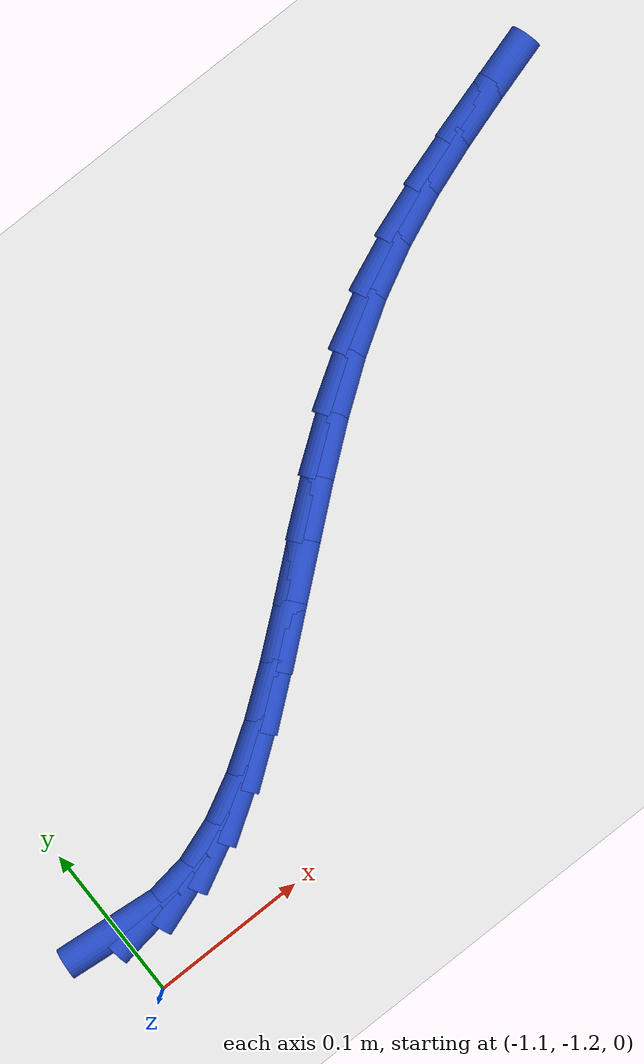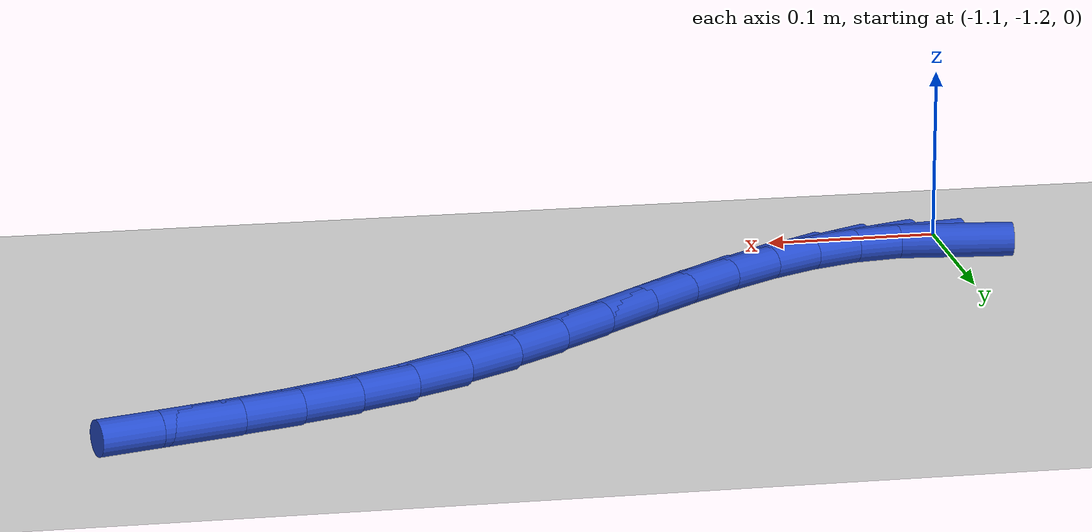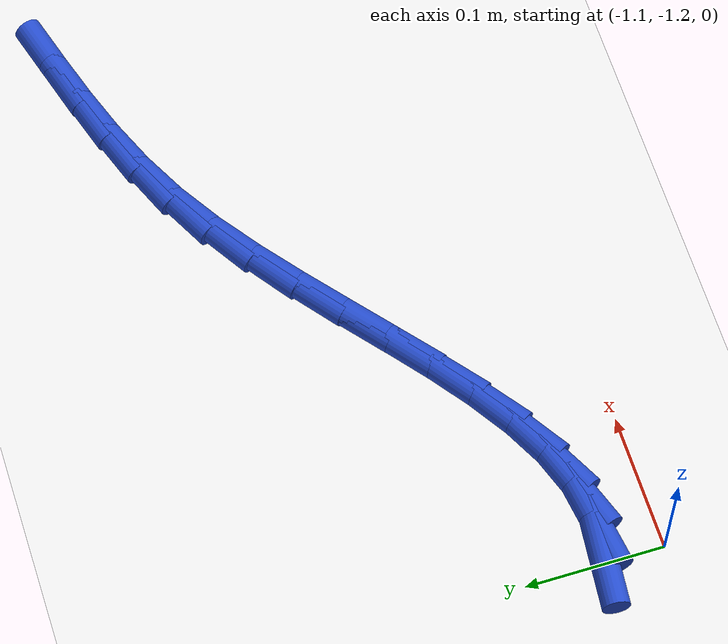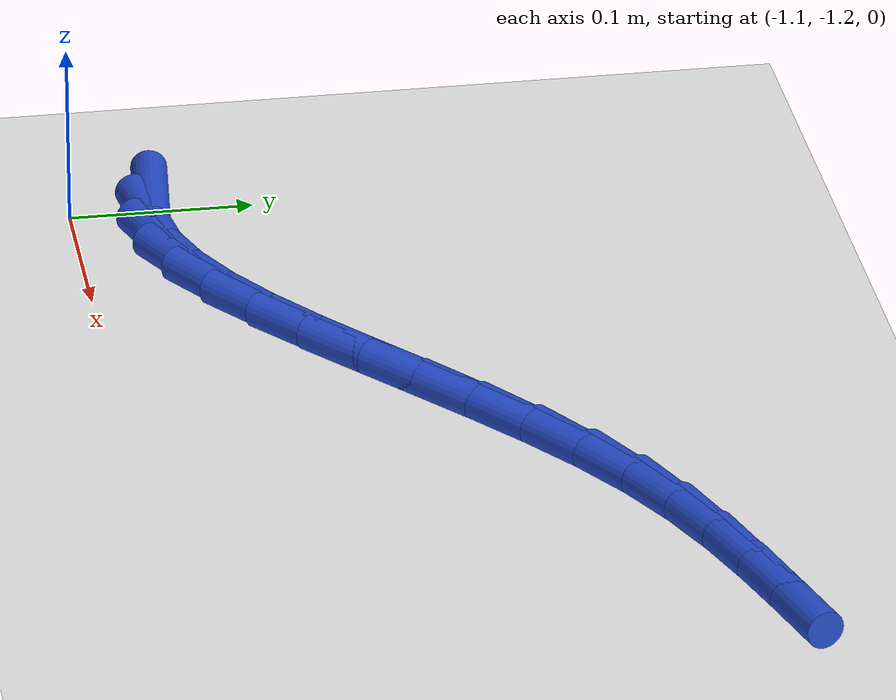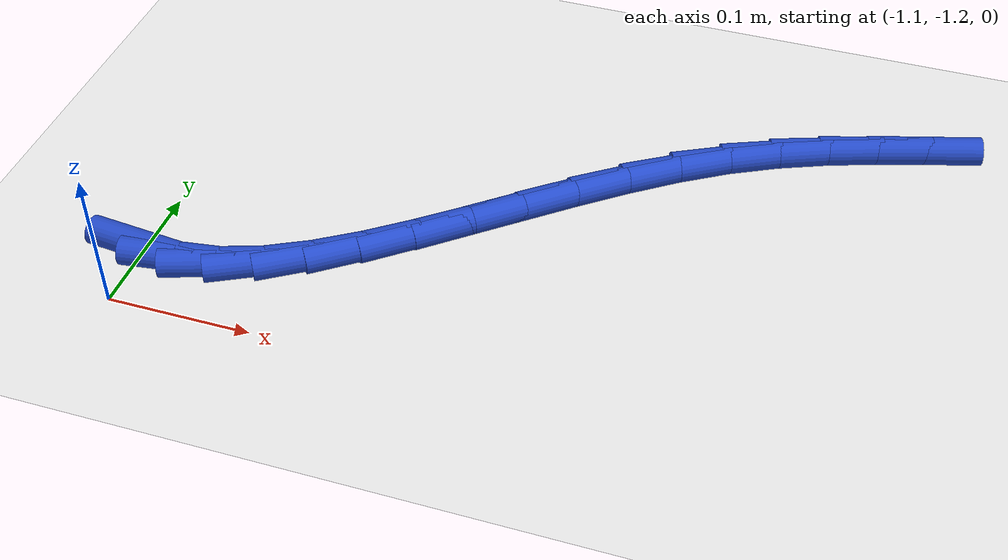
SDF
<sdf version="1.6">
 <world name="default">
  <model name="ground_plane">
   <static>1</static>
   <link name="link">
    <collision name="collision">
     <geometry><plane><normal>0 0 1</normal><size>100 100</size></plane></geometry>
     <surface><friction><ode><mu>100</mu><mu2>50</mu2></ode></friction></surface>
    </collision>
    <visual name="visual">
     <cast_shadows>0</cast_shadows>
     <geometry><plane><normal>0 0 1</normal><size>100 100</size></plane></geometry>
     <material>
      <script><uri>file://media/materials/scripts/gazebo.material</uri><name>Gazebo/WhiteGlow</name></script>
     </material>
    </visual>
   </link>
  </model>
  <model name="line">
   <link name="link_150">
    <pose>-1.0959551529598943 -1.1561474648291121 0.01 0 1.57 -0.09946087204143744</pose>
    <collision name="collision">
     <geometry><cylinder><radius>0.01</radius><length>0.08</length></cylinder></geometry>
    </collision>
    <visual name="visual">
     <material>
      <script><name>Gazebo/Blue</name><uri>file://media/materials/scripts/gazebo.material</uri></script>
     </material>
     <geometry><cylinder><radius>0.01</radius><length>0.08</length></cylinder></geometry>
    </visual>
   </link>
   <link name="link_151">
    <pose>-1.0687622215412382 -1.1588610514283517 0.01 0 1.57 0.13970053907446023</pose>
    <collision name="collision">
     <geometry><cylinder><radius>0.01</radius><length>0.08</length></cylinder></geometry>
    </collision>
    <visual name="visual">
     <material>
      <script><name>Gazebo/Blue</name><uri>file://media/materials/scripts/gazebo.material</uri></script>
     </material>
     <geometry><cylinder><radius>0.01</radius><length>0.08</length></cylinder></geometry>
    </visual>
   </link>
   <link name="link_152">
    <pose>-1.0413247240787977 -1.155002886567436 0.01 0 1.57 0.33251428009706996</pose>
    <collision name="collision">
     <geometry><cylinder><radius>0.01</radius><length>0.08</length></cylinder></geometry>
    </collision>
    <visual name="visual">
     <material>
      <script><name>Gazebo/Blue</name><uri>file://media/materials/scripts/gazebo.material</uri></script>
     </material>
     <geometry><cylinder><radius>0.01</radius><length>0.08</length></cylinder></geometry>
    </visual>
   </link>
   <link name="link_153">
    <pose>-1.0136114056523668 -1.1454324645549419 0.01 0 1.57 0.47381225916497105</pose>
    <collision name="collision">
     <geometry><cylinder><radius>0.01</radius><length>0.08</length></cylinder></geometry>
    </collision>
    <visual name="visual">
     <material>
      <script><name>Gazebo/Blue</name><uri>file://media/materials/scripts/gazebo.material</uri></script>
     </material>
     <geometry><cylinder><radius>0.01</radius><length>0.08</length></cylinder></geometry>
    </visual>
   </link>
   <link name="link_154">
    <pose>-0.9855918743573369 -1.1310648569976172 0.01 0 1.57 0.5718557602786936</pose>
    <collision name="collision">
     <geometry><cylinder><radius>0.01</radius><length>0.08</length></cylinder></geometry>
    </collision>
    <visual name="visual">
     <material>
      <script><name>Gazebo/Blue</name><uri>file://media/materials/scripts/gazebo.material</uri></script>
     </material>
     <geometry><cylinder><radius>0.01</radius><length>0.08</length></cylinder></geometry>
    </visual>
   </link>
   <link name="link_155">
    <pose>-0.9572357382890985 -1.1128151355022096 0.01 0 1.57 0.6362069492398982</pose>
    <collision name="collision">
     <geometry><cylinder><radius>0.01</radius><length>0.08</length></cylinder></geometry>
    </collision>
    <visual name="visual">
     <material>
      <script><name>Gazebo/Blue</name><uri>file://media/materials/scripts/gazebo.material</uri></script>
     </material>
     <geometry><cylinder><radius>0.01</radius><length>0.08</length></cylinder></geometry>
    </visual>
   </link>
   <link name="link_156">
    <pose>-0.9285126055430426 -1.0915983716754674 0.01 0 1.57 0.6741610278380141</pose>
    <collision name="collision">
     <geometry><cylinder><radius>0.01</radius><length>0.08</length></cylinder></geometry>
    </collision>
    <visual name="visual">
     <material>
      <script><name>Gazebo/Blue</name><uri>file://media/materials/scripts/gazebo.material</uri></script>
     </material>
     <geometry><cylinder><radius>0.01</radius><length>0.08</length></cylinder></geometry>
    </visual>
   </link>
   <link name="link_157">
    <pose>-0.8993920842145602 -1.068329637124137 0.01 0 1.57 0.6903693480568487</pose>
    <collision name="collision">
     <geometry><cylinder><radius>0.01</radius><length>0.08</length></cylinder></geometry>
    </collision>
    <visual name="visual">
     <material>
      <script><name>Gazebo/Blue</name><uri>file://media/materials/scripts/gazebo.material</uri></script>
     </material>
     <geometry><cylinder><radius>0.01</radius><length>0.08</length></cylinder></geometry>
    </visual>
   </link>
   <link name="link_158">
    <pose>-0.8698437823990421 -1.0439240034549675 0.01 0 1.57 0.687258922488571</pose>
    <collision name="collision">
     <geometry><cylinder><radius>0.01</radius><length>0.08</length></cylinder></geometry>
    </collision>
    <visual name="visual">
     <material>
      <script><name>Gazebo/Blue</name><uri>file://media/materials/scripts/gazebo.material</uri></script>
     </material>
     <geometry><cylinder><radius>0.01</radius><length>0.08</length></cylinder></geometry>
    </visual>
   </link>
   <link name="link_159">
    <pose>-0.8398373081918795 -1.019296542274706 0.01 0 1.57 0.6654384048064904</pose>
    <collision name="collision">
     <geometry><cylinder><radius>0.01</radius><length>0.08</length></cylinder></geometry>
    </collision>
    <visual name="visual">
     <material>
      <script><name>Gazebo/Blue</name><uri>file://media/materials/scripts/gazebo.material</uri></script>
     </material>
     <geometry><cylinder><radius>0.01</radius><length>0.08</length></cylinder></geometry>
    </visual>
   </link>
   <link name="link_160">
    <pose>-0.8093422696884631 -0.9953623251901004 0.01 0 1.57 0.623934394554252</pose>
    <collision name="collision">
     <geometry><cylinder><radius>0.01</radius><length>0.08</length></cylinder></geometry>
    </collision>
    <visual name="visual">
     <material>
      <script><name>Gazebo/Blue</name><uri>file://media/materials/scripts/gazebo.material</uri></script>
     </material>
     <geometry><cylinder><radius>0.01</radius><length>0.08</length></cylinder></geometry>
    </visual>
   </link>
   <link name="link_161">
    <pose>-0.7783282749841842 -0.9730364238078988 0.01 0 1.57 0.5603158581364138</pose>
    <collision name="collision">
     <geometry><cylinder><radius>0.01</radius><length>0.08</length></cylinder></geometry>
    </collision>
    <visual name="visual">
     <material>
      <script><name>Gazebo/Blue</name><uri>file://media/materials/scripts/gazebo.material</uri></script>
     </material>
     <geometry><cylinder><radius>0.01</radius><length>0.08</length></cylinder></geometry>
    </visual>
   </link>
   <link name="link_162">
    <pose>-0.7467649321744332 -0.953233909734848 0.01 0 1.57 0.475985138029012</pose>
    <collision name="collision">
     <geometry><cylinder><radius>0.01</radius><length>0.08</length></cylinder></geometry>
    </collision>
    <visual name="visual">
     <material>
      <script><name>Gazebo/Blue</name><uri>file://media/materials/scripts/gazebo.material</uri></script>
     </material>
     <geometry><cylinder><radius>0.01</radius><length>0.08</length></cylinder></geometry>
    </visual>
   </link>
   <link name="link_163">
    <pose>-0.7146472918394783 -0.9366766742718897 0.01 0 1.57 0.3980368376299844</pose>
    <collision name="collision">
     <geometry><cylinder><radius>0.01</radius><length>0.08</length></cylinder></geometry>
    </collision>
    <visual name="visual">
     <material>
      <script><name>Gazebo/Blue</name><uri>file://media/materials/scripts/gazebo.material</uri></script>
     </material>
     <geometry><cylinder><radius>0.01</radius><length>0.08</length></cylinder></geometry>
    </visual>
   </link>
   <link name="link_164">
    <pose>-0.6821139091823664 -0.9229970033984748 0.01 0 1.57 0.3389946984229014</pose>
    <collision name="collision">
     <geometry><cylinder><radius>0.01</radius><length>0.08</length></cylinder></geometry>
    </collision>
    <visual name="visual">
     <material>
      <script><name>Gazebo/Blue</name><uri>file://media/materials/scripts/gazebo.material</uri></script>
     </material>
     <geometry><cylinder><radius>0.01</radius><length>0.08</length></cylinder></geometry>
    </visual>
   </link>
   <link name="link_165">
    <pose>-0.6493536059783509 -0.9114455178660884 0.01 0 1.57 0.3007614159644585</pose>
    <collision name="collision">
     <geometry><cylinder><radius>0.01</radius><length>0.08</length></cylinder></geometry>
    </collision>
    <visual name="visual">
     <material>
      <script><name>Gazebo/Blue</name><uri>file://media/materials/scripts/gazebo.material</uri></script>
     </material>
     <geometry><cylinder><radius>0.01</radius><length>0.08</length></cylinder></geometry>
    </visual>
   </link>
   <link name="link_166">
    <pose>-0.6165552577240957 -0.9012724305290041 0.01 0 1.57 0.2844230326717346</pose>
    <collision name="collision">
     <geometry><cylinder><radius>0.01</radius><length>0.08</length></cylinder></geometry>
    </collision>
    <visual name="visual">
     <material>
      <script><name>Gazebo/Blue</name><uri>file://media/materials/scripts/gazebo.material</uri></script>
     </material>
     <geometry><cylinder><radius>0.01</radius><length>0.08</length></cylinder></geometry>
    </visual>
   </link>
  </model>
 </world>
</sdf>
